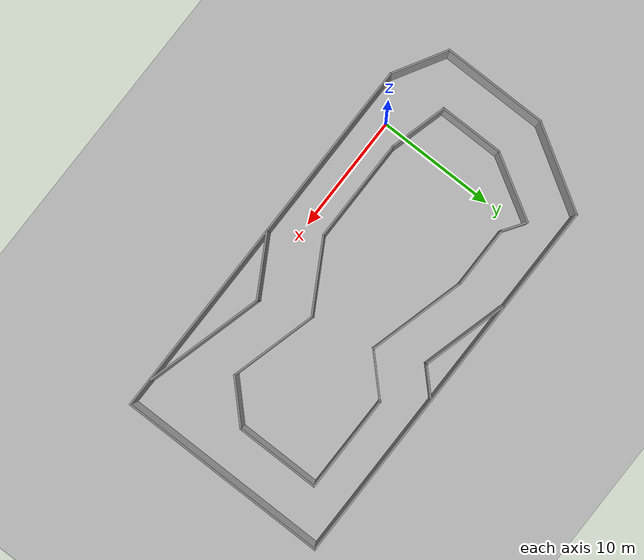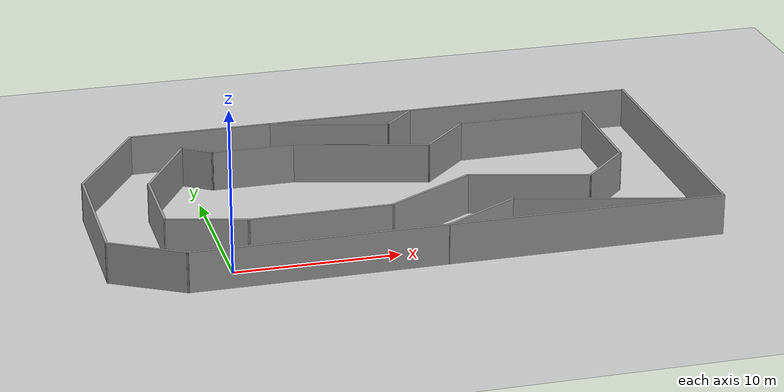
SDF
<?xml version='1.0'?>
<sdf version='1.7'>
  <world name='default'>
    <light name='sun' type='directional'>
      <cast_shadows>1</cast_shadows>
      <pose>0 0 10 0 -0 0</pose>
      <diffuse>0.8 0.8 0.8 1</diffuse>
      <specular>0.2 0.2 0.2 1</specular>
      <attenuation>
        <range>1000</range>
        <constant>0.9</constant>
        <linear>0.01</linear>
        <quadratic>0.001</quadratic>
      </attenuation>
      <direction>-0.5 0.1 -0.9</direction>
      <spot>
        <inner_angle>0</inner_angle>
        <outer_angle>0</outer_angle>
        <falloff>0</falloff>
      </spot>
    </light>
    <model name='ground_plane'>
      <static>1</static>
      <link name='link'>
        <collision name='collision'>
          <geometry>
            <plane>
              <normal>0 0 1</normal>
              <size>100 100</size>
            </plane>
          </geometry>
          <surface>
            <friction>
              <ode>
                <mu>100</mu>
                <mu2>50</mu2>
              </ode>
              <torsional>
                <ode/>
              </torsional>
            </friction>
            <contact>
              <ode/>
            </contact>
            <bounce/>
          </surface>
          <max_contacts>10</max_contacts>
        </collision>
        <visual name='visual'>
          <cast_shadows>0</cast_shadows>
          <geometry>
            <plane>
              <normal>0 0 1</normal>
              <size>100 100</size>
            </plane>
          </geometry>
          <material>
            <script>
              <uri>file://media/materials/scripts/gazebo.material</uri>
              <name>Gazebo/Grey</name>
            </script>
          </material>
        </visual>
        <self_collide>0</self_collide>
        <enable_wind>0</enable_wind>
        <kinematic>0</kinematic>
      </link>
    </model>
  <model name='demomap'>
    <pose>11 7 0 0 -0 0</pose>
    <link name='Wall_10'>
      <collision name='Wall_10_Collision'>
        <geometry>
          <box>
            <size>5.5 0.15 2.5</size>
          </box>
        </geometry>
        <pose>0 0 1.25 0 -0 0</pose>
      </collision>
      <visual name='Wall_10_Visual'>
        <pose>0 0 1.25 0 -0 0</pose>
        <geometry>
          <box>
            <size>5.5 0.15 2.5</size>
          </box>
        </geometry>
        <material>
          <script>
            <uri>file://media/materials/scripts/gazebo.material</uri>
            <name>Gazebo/Grey</name>
          </script>
          <ambient>1 1 1 1</ambient>
        </material>
        <meta>
          <layer>0</layer>
        </meta>
      </visual>
      <pose>-14.3432 -1.40899 0 0 -0 -1.5708</pose>
    </link>
    <link name='Wall_11'>
      <collision name='Wall_11_Collision'>
        <geometry>
          <box>
            <size>5 0.15 2.5</size>
          </box>
        </geometry>
        <pose>0 0 1.25 0 -0 0</pose>
      </collision>
      <visual name='Wall_11_Visual'>
        <pose>0 0 1.25 0 -0 0</pose>
        <geometry>
          <box>
            <size>5 0.15 2.5</size>
          </box>
        </geometry>
        <material>
          <script>
            <uri>file://media/materials/scripts/gazebo.material</uri>
            <name>Gazebo/Grey</name>
          </script>
          <ambient>1 1 1 1</ambient>
        </material>
        <meta>
          <layer>0</layer>
        </meta>
      </visual>
      <pose>-12.0009 -4.71163 0 0 -0 -0.261799</pose>
    </link>
    <link name='Wall_12'>
      <collision name='Wall_12_Collision'>
        <geometry>
          <box>
            <size>8.75 0.15 2.5</size>
          </box>
        </geometry>
        <pose>0 0 1.25 0 -0 0</pose>
      </collision>
      <visual name='Wall_12_Visual'>
        <pose>0 0 1.25 0 -0 0</pose>
        <geometry>
          <box>
            <size>8.75 0.15 2.5</size>
          </box>
        </geometry>
        <material>
          <script>
            <uri>file://media/materials/scripts/gazebo.material</uri>
            <name>Gazebo/Grey</name>
          </script>
          <ambient>1 1 1 1</ambient>
        </material>
        <meta>
          <layer>0</layer>
        </meta>
      </visual>
      <pose>-5.35848 -5.33926 0 0 -0 0</pose>
    </link>
    <link name='Wall_13'>
      <collision name='Wall_13_Collision'>
        <geometry>
          <box>
            <size>6.5 0.15 2.5</size>
          </box>
        </geometry>
        <pose>0 0 1.25 0 -0 0</pose>
      </collision>
      <visual name='Wall_13_Visual'>
        <pose>0 0 1.25 0 -0 0</pose>
        <geometry>
          <box>
            <size>6.5 0.15 2.5</size>
          </box>
        </geometry>
        <material>
          <script>
            <uri>file://media/materials/scripts/gazebo.material</uri>
            <name>Gazebo/Grey</name>
          </script>
          <ambient>1 1 1 1</ambient>
        </material>
        <meta>
          <layer>0</layer>
        </meta>
      </visual>
      <pose>1.69115 -3.75176 0 0 -0 0.523599</pose>
    </link>
    <link name='Wall_14'>
      <collision name='Wall_14_Collision'>
        <geometry>
          <box>
            <size>7.5 0.15 2.5</size>
          </box>
        </geometry>
        <pose>0 0 1.25 0 -0 0</pose>
      </collision>
      <visual name='Wall_14_Visual'>
        <pose>0 0 1.25 0 -0 0</pose>
        <geometry>
          <box>
            <size>7.5 0.15 2.5</size>
          </box>
        </geometry>
        <material>
          <script>
            <uri>file://media/materials/scripts/gazebo.material</uri>
            <name>Gazebo/Grey</name>
          </script>
          <ambient>1 1 1 1</ambient>
        </material>
        <meta>
          <layer>0</layer>
        </meta>
      </visual>
      <pose>7.99056 -3.11543 0 0 -0 -0.261799</pose>
    </link>
    <link name='Wall_15'>
      <collision name='Wall_15_Collision'>
        <geometry>
          <box>
            <size>4.25 0.15 2.5</size>
          </box>
        </geometry>
        <pose>0 0 1.25 0 -0 0</pose>
      </collision>
      <visual name='Wall_15_Visual'>
        <pose>0 0 1.25 0 -0 0</pose>
        <geometry>
          <box>
            <size>4.25 0.15 2.5</size>
          </box>
        </geometry>
        <material>
          <script>
            <uri>file://media/materials/scripts/gazebo.material</uri>
            <name>Gazebo/Grey</name>
          </script>
          <ambient>1 1 1 1</ambient>
        </material>
        <meta>
          <layer>0</layer>
        </meta>
      </visual>
      <pose>12.9899 -2.61702 0 0 -0 0.785398</pose>
    </link>
    <link name='Wall_16'>
      <collision name='Wall_16_Collision'>
        <geometry>
          <box>
            <size>7.25 0.15 2.5</size>
          </box>
        </geometry>
        <pose>0 0 1.25 0 -0 0</pose>
      </collision>
      <visual name='Wall_16_Visual'>
        <pose>0 0 1.25 0 -0 0</pose>
        <geometry>
          <box>
            <size>7.25 0.15 2.5</size>
          </box>
        </geometry>
        <material>
          <script>
            <uri>file://media/materials/scripts/gazebo.material</uri>
            <name>Gazebo/Grey</name>
          </script>
          <ambient>1 1 1 1</ambient>
        </material>
        <meta>
          <layer>0</layer>
        </meta>
      </visual>
      <pose>14.4395 2.38255 0 0 -0 1.5708</pose>
    </link>
    <link name='Wall_17'>
      <collision name='Wall_17_Collision'>
        <geometry>
          <box>
            <size>8.25 0.15 2.5</size>
          </box>
        </geometry>
        <pose>0 0 1.25 0 -0 0</pose>
      </collision>
      <visual name='Wall_17_Visual'>
        <pose>0 0 1.25 0 -0 0</pose>
        <geometry>
          <box>
            <size>8.25 0.15 2.5</size>
          </box>
        </geometry>
        <material>
          <script>
            <uri>file://media/materials/scripts/gazebo.material</uri>
            <name>Gazebo/Grey</name>
          </script>
          <ambient>1 1 1 1</ambient>
        </material>
        <meta>
          <layer>0</layer>
        </meta>
      </visual>
      <pose>10.3895 5.93255 0 0 -0 3.14159</pose>
    </link>
    <link name='Wall_18'>
      <collision name='Wall_18_Collision'>
        <geometry>
          <box>
            <size>4.25 0.15 2.5</size>
          </box>
        </geometry>
        <pose>0 0 1.25 0 -0 0</pose>
      </collision>
      <visual name='Wall_18_Visual'>
        <pose>0 0 1.25 0 -0 0</pose>
        <geometry>
          <box>
            <size>4.25 0.15 2.5</size>
          </box>
        </geometry>
        <material>
          <script>
            <uri>file://media/materials/scripts/gazebo.material</uri>
            <name>Gazebo/Grey</name>
          </script>
          <ambient>1 1 1 1</ambient>
        </material>
        <meta>
          <layer>0</layer>
        </meta>
      </visual>
      <pose>4.8899 4.48299 0 0 -0 -2.35619</pose>
    </link>
    <link name='Wall_19'>
      <collision name='Wall_19_Collision'>
        <geometry>
          <box>
            <size>8.5 0.15 2.5</size>
          </box>
        </geometry>
        <pose>0 0 1.25 0 -0 0</pose>
      </collision>
      <visual name='Wall_19_Visual'>
        <pose>0 0 1.25 0 -0 0</pose>
        <geometry>
          <box>
            <size>8.5 0.15 2.5</size>
          </box>
        </geometry>
        <material>
          <script>
            <uri>file://media/materials/scripts/gazebo.material</uri>
            <name>Gazebo/Grey</name>
          </script>
          <ambient>1 1 1 1</ambient>
        </material>
        <meta>
          <layer>0</layer>
        </meta>
      </visual>
      <pose>-0.592405 4.11398 0 0 -0 2.87979</pose>
    </link>
    <link name='Wall_2'>
      <collision name='Wall_2_Collision'>
        <geometry>
          <box>
            <size>9 0.15 2.5</size>
          </box>
        </geometry>
        <pose>0 0 1.25 0 -0 0</pose>
      </collision>
      <visual name='Wall_2_Visual'>
        <pose>0 0 1.25 0 -0 0</pose>
        <geometry>
          <box>
            <size>9 0.15 2.5</size>
          </box>
        </geometry>
        <material>
          <script>
            <uri>file://media/materials/scripts/gazebo.material</uri>
            <name>Gazebo/Grey</name>
          </script>
          <ambient>1 1 1 1</ambient>
        </material>
        <meta>
          <layer>0</layer>
        </meta>
      </visual>
      <pose>-18.1362 -2.07523 0 0 -0 -1.5708</pose>
    </link>
    <link name='Wall_20'>
      <collision name='Wall_20_Collision'>
        <geometry>
          <box>
            <size>5.25 0.15 2.5</size>
          </box>
        </geometry>
        <pose>0 0 1.25 0 -0 0</pose>
      </collision>
      <visual name='Wall_20_Visual'>
        <pose>0 0 1.25 0 -0 0</pose>
        <geometry>
          <box>
            <size>5.25 0.15 2.5</size>
          </box>
        </geometry>
        <material>
          <script>
            <uri>file://media/materials/scripts/gazebo.material</uri>
            <name>Gazebo/Grey</name>
          </script>
          <ambient>1 1 1 1</ambient>
        </material>
        <meta>
          <layer>0</layer>
        </meta>
      </visual>
      <pose>-7.17515 5.19455 0 0 -0 3.14159</pose>
    </link>
    <link name='Wall_21'>
      <collision name='Wall_21_Collision'>
        <geometry>
          <box>
            <size>2.18982 0.15 2.5</size>
          </box>
        </geometry>
        <pose>0 0 1.25 0 -0 0</pose>
      </collision>
      <visual name='Wall_21_Visual'>
        <pose>0 0 1.25 0 -0 0</pose>
        <geometry>
          <box>
            <size>2.18982 0.15 2.5</size>
          </box>
        </geometry>
        <material>
          <script>
            <uri>file://media/materials/scripts/gazebo.material</uri>
            <name>Gazebo/Grey</name>
          </script>
          <ambient>1 1 1 1</ambient>
        </material>
        <meta>
          <layer>0</layer>
        </meta>
      </visual>
      <pose>-10.5717 5.7634 0 0 -0 2.54992</pose>
    </link>
    <link name='Wall_23'>
      <collision name='Wall_23_Collision'>
        <geometry>
          <box>
            <size>5.5 0.15 2.5</size>
          </box>
        </geometry>
        <pose>0 0 1.25 0 -0 0</pose>
      </collision>
      <visual name='Wall_23_Visual'>
        <pose>0 0 1.25 0 -0 0</pose>
        <geometry>
          <box>
            <size>5.5 0.15 2.5</size>
          </box>
        </geometry>
        <material>
          <script>
            <uri>file://media/materials/scripts/gazebo.material</uri>
            <name>Gazebo/Grey</name>
          </script>
          <ambient>1 1 1 1</ambient>
        </material>
        <meta>
          <layer>0</layer>
        </meta>
      </visual>
      <pose>3.69063 -7.57633 0 0 -0 0.523599</pose>
    </link>
    <link name='Wall_24'>
      <collision name='Wall_24_Collision'>
        <geometry>
          <box>
            <size>10.25 0.15 2.5</size>
          </box>
        </geometry>
        <pose>0 0 1.25 0 -0 0</pose>
      </collision>
      <visual name='Wall_24_Visual'>
        <pose>0 0 1.25 0 -0 0</pose>
        <geometry>
          <box>
            <size>10.25 0.15 2.5</size>
          </box>
        </geometry>
        <material>
          <script>
            <uri>file://media/materials/scripts/gazebo.material</uri>
            <name>Gazebo/Grey</name>
          </script>
          <ambient>1 1 1 1</ambient>
        </material>
        <meta>
          <layer>0</layer>
        </meta>
      </visual>
      <pose>10.8852 -7.54587 0 0 -0 -0.261799</pose>
    </link>
    <link name='Wall_26'>
      <collision name='Wall_26_Collision'>
        <geometry>
          <box>
            <size>2.75 0.15 2.5</size>
          </box>
        </geometry>
        <pose>0 0 1.25 0 -0 0</pose>
      </collision>
      <visual name='Wall_26_Visual'>
        <pose>0 0 1.25 0 -0 0</pose>
        <geometry>
          <box>
            <size>2.75 0.15 2.5</size>
          </box>
        </geometry>
        <material>
          <script>
            <uri>file://media/materials/scripts/gazebo.material</uri>
            <name>Gazebo/Grey</name>
          </script>
          <ambient>1 1 1 1</ambient>
        </material>
        <meta>
          <layer>0</layer>
        </meta>
      </visual>
      <pose>2.78795 7.86687 0 0 -0 -2.35619</pose>
    </link>
    <link name='Wall_27'>
      <collision name='Wall_27_Collision'>
        <geometry>
          <box>
            <size>7.5 0.15 2.5</size>
          </box>
        </geometry>
        <pose>0 0 1.25 0 -0 0</pose>
      </collision>
      <visual name='Wall_27_Visual'>
        <pose>0 0 1.25 0 -0 0</pose>
        <geometry>
          <box>
            <size>7.5 0.15 2.5</size>
          </box>
        </geometry>
        <material>
          <script>
            <uri>file://media/materials/scripts/gazebo.material</uri>
            <name>Gazebo/Grey</name>
          </script>
          <ambient>1 1 1 1</ambient>
        </material>
        <meta>
          <layer>0</layer>
        </meta>
      </visual>
      <pose>-1.68107 7.89879 0 0 -0 2.87979</pose>
    </link>
    <link name='Wall_3'>
      <collision name='Wall_3_Collision'>
        <geometry>
          <box>
            <size>5 0.15 2.5</size>
          </box>
        </geometry>
        <pose>0 0 1.25 0 -0 0</pose>
      </collision>
      <visual name='Wall_3_Visual'>
        <pose>0 0 1.25 0 -0 0</pose>
        <geometry>
          <box>
            <size>5 0.15 2.5</size>
          </box>
        </geometry>
        <material>
          <script>
            <uri>file://media/materials/scripts/gazebo.material</uri>
            <name>Gazebo/Grey</name>
          </script>
          <ambient>1 1 1 1</ambient>
        </material>
        <meta>
          <layer>0</layer>
        </meta>
      </visual>
      <pose>-16.036 -7.71273 0 0 -0 -0.523599</pose>
    </link>
    <link name='Wall_4'>
      <collision name='Wall_4_Collision'>
        <geometry>
          <box>
            <size>32.25 0.15 2.5</size>
          </box>
        </geometry>
        <pose>0 0 1.25 0 -0 0</pose>
      </collision>
      <visual name='Wall_4_Visual'>
        <pose>0 0 1.25 0 -0 0</pose>
        <geometry>
          <box>
            <size>32.25 0.15 2.5</size>
          </box>
        </geometry>
        <material>
          <script>
            <uri>file://media/materials/scripts/gazebo.material</uri>
            <name>Gazebo/Grey</name>
          </script>
          <ambient>1 1 1 1</ambient>
        </material>
        <meta>
          <layer>0</layer>
        </meta>
      </visual>
      <pose>2.11407 -8.92523 0 0 -0 0</pose>
    </link>
    <link name='Wall_5'>
      <collision name='Wall_5_Collision'>
        <geometry>
          <box>
            <size>18 0.15 2.5</size>
          </box>
        </geometry>
        <pose>0 0 1.25 0 -0 0</pose>
      </collision>
      <visual name='Wall_5_Visual'>
        <pose>0 0 1.25 0 -0 0</pose>
        <geometry>
          <box>
            <size>18 0.15 2.5</size>
          </box>
        </geometry>
        <material>
          <script>
            <uri>file://media/materials/scripts/gazebo.material</uri>
            <name>Gazebo/Grey</name>
          </script>
          <ambient>1 1 1 1</ambient>
        </material>
        <meta>
          <layer>0</layer>
        </meta>
      </visual>
      <pose>18.1641 -0.000231 0 0 -0 1.5708</pose>
    </link>
    <link name='Wall_6'>
      <collision name='Wall_6_Collision'>
        <geometry>
          <box>
            <size>32.5 0.15 2.5</size>
          </box>
        </geometry>
        <pose>0 0 1.25 0 -0 0</pose>
      </collision>
      <visual name='Wall_6_Visual'>
        <pose>0 0 1.25 0 -0 0</pose>
        <geometry>
          <box>
            <size>32.5 0.15 2.5</size>
          </box>
        </geometry>
        <material>
          <script>
            <uri>file://media/materials/scripts/gazebo.material</uri>
            <name>Gazebo/Grey</name>
          </script>
          <ambient>1 1 1 1</ambient>
        </material>
        <meta>
          <layer>0</layer>
        </meta>
      </visual>
      <pose>1.98907 8.92477 0 0 -0 3.14159</pose>
    </link>
    <link name='Wall_7'>
      <collision name='Wall_7_Collision'>
        <geometry>
          <box>
            <size>7.82039 0.15 2.5</size>
          </box>
        </geometry>
        <pose>0 0 1.25 0 -0 0</pose>
      </collision>
      <visual name='Wall_7_Visual'>
        <pose>0 0 1.25 0 -0 0</pose>
        <geometry>
          <box>
            <size>7.82039 0.15 2.5</size>
          </box>
        </geometry>
        <material>
          <script>
            <uri>file://media/materials/scripts/gazebo.material</uri>
            <name>Gazebo/Grey</name>
          </script>
          <ambient>1 1 1 1</ambient>
        </material>
        <meta>
          <layer>0</layer>
        </meta>
      </visual>
      <pose>-16.161 5.63727 0 0 -0 -2.1118</pose>
    </link>
    <link name='Wall_9'>
      <collision name='Wall_9_Collision'>
        <geometry>
          <box>
            <size>6 0.15 2.5</size>
          </box>
        </geometry>
        <pose>0 0 1.25 0 -0 0</pose>
      </collision>
      <visual name='Wall_9_Visual'>
        <pose>0 0 1.25 0 -0 0</pose>
        <geometry>
          <box>
            <size>6 0.15 2.5</size>
          </box>
        </geometry>
        <material>
          <script>
            <uri>file://media/materials/scripts/gazebo.material</uri>
            <name>Gazebo/Grey</name>
          </script>
          <ambient>1 1 1 1</ambient>
        </material>
        <meta>
          <layer>0</layer>
        </meta>
      </visual>
      <pose>-12.8807 3.79913 0 0 -0 -2.0944</pose>
    </link>
    <static>1</static>
  </model>
  </world>
</sdf>
